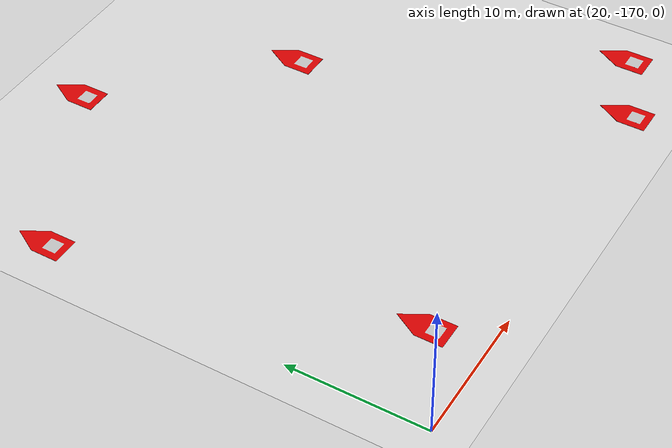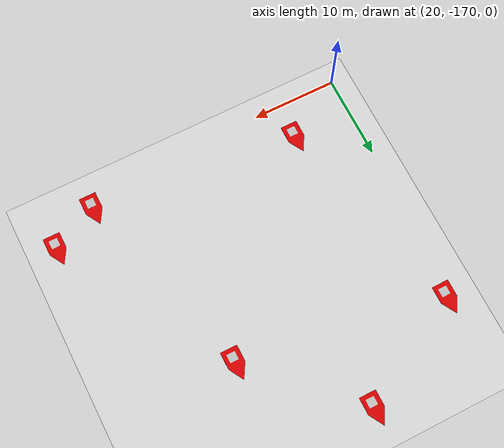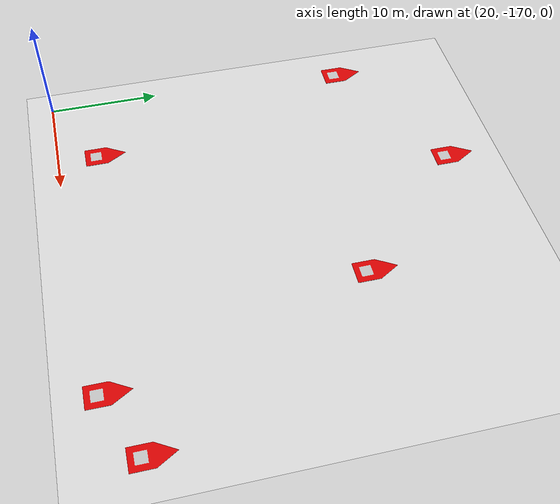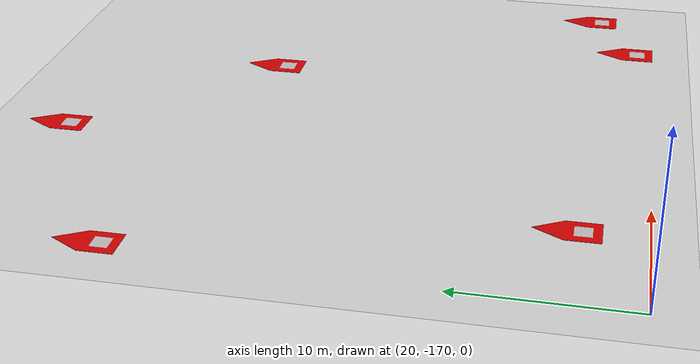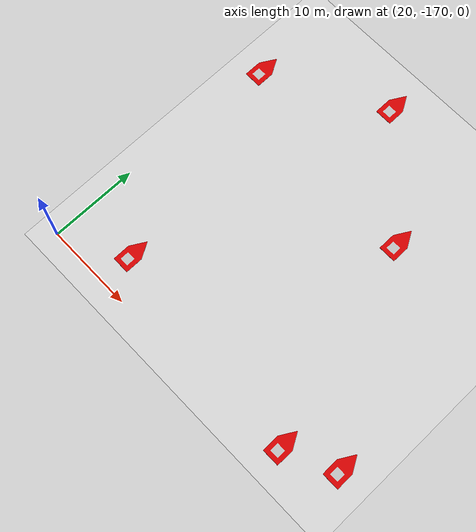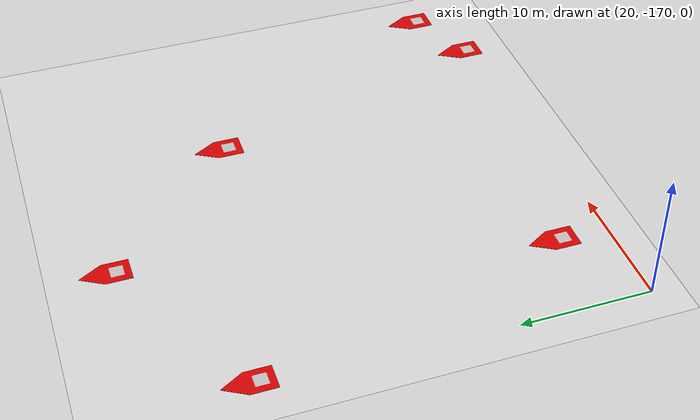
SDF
<sdf version="1.7">
 <world name="default">
  <model name="ground_plane">
   <static>1</static>
   <link name="link">
    <collision name="collision">
     <geometry><plane><normal>0 0 1</normal><size>5000 5000</size></plane></geometry>
     <surface><friction><ode><mu>1</mu><mu2>1</mu2></ode></friction></surface>
    </collision>
    <visual name="runway">
     <pose>0 0 0.005 0 0 -1.5707</pose>
     <cast_shadows>0</cast_shadows>
     <geometry><plane><normal>0 0 1</normal><size>1829 45</size></plane></geometry>
     <material>
      <script><uri>file://media/materials/scripts/gazebo.material</uri><name>Gazebo/Runway</name></script>
     </material>
    </visual>
    <visual name="grass">
     <pose>0 0 -0.1 0 -0 0</pose>
     <cast_shadows>0</cast_shadows>
     <geometry><plane><normal>0 0 1</normal><size>5000 5000</size></plane></geometry>
     <material>
      <script><uri>file://media/materials/scripts/gazebo.material</uri><name>Gazebo/Grass</name></script>
     </material>
    </visual>
   </link>
  </model>
  <model name="biao_12_0_clone_16_clone_0_clone_1">
   <link name="link_0">
    <inertial>
     <mass>1</mass>
     <inertia>
      <ixx>0.166667</ixx>
      <ixy>0</ixy>
      <ixz>0</ixz>
      <iyy>0.166667</iyy>
      <iyz>0</iyz>
      <izz>0.166667</izz>
     </inertia>
    </inertial>
    <visual name="visual">
     <geometry>
      <mesh><uri>/home/lzc/lzc-code/src/simulation/models/biao/12/12.dae</uri><scale>1 1 1</scale></mesh>
     </geometry>
    </visual>
    <collision name="collision">
     <geometry>
      <mesh><uri>/home/lzc/lzc-code/src/simulation/models/biao/12/12.dae</uri><scale>1 1 1</scale></mesh>
     </geometry>
     <surface>
      <friction>
       <ode><mu>1</mu><mu2>1</mu2><fdir1>0 0 0</fdir1><slip1>0</slip1><slip2>0</slip2></ode>
       <torsional>
        <coefficient>1</coefficient>
        <patch_radius>0</patch_radius>
        <surface_radius>0</surface_radius>
        <use_patch_radius>1</use_patch_radius>
        <ode><slip>0</slip></ode>
       </torsional>
      </friction>
      <bounce><restitution_coefficient>0</restitution_coefficient><threshold>1e+06</threshold></bounce>
      <contact>
       <collide_without_contact>0</collide_without_contact>
       <collide_without_contact_bitmask>1</collide_without_contact_bitmask>
       <collide_bitmask>1</collide_bitmask>
       <ode>
        <soft_cfm>0</soft_cfm>
        <soft_erp>0.2</soft_erp>
        <kp>1e+13</kp>
        <kd>1</kd>
        <max_vel>0.01</max_vel>
        <min_depth>0</min_depth>
       </ode>
       <bullet>
        <split_impulse>1</split_impulse>
        <split_impulse_penetration_threshold>-0.01</split_impulse_penetration_threshold>
        <soft_cfm>0</soft_cfm>
        <soft_erp>0.2</soft_erp>
        <kp>1e+13</kp>
        <kd>1</kd>
       </bullet>
      </contact>
     </surface>
    </collision>
   </link>
   <static>0</static>
   <pose>27 -166.516 0.010973 -2.7e-05 -2.7e-05 -1e-06</pose>
  </model>
  <model name="biao_12_0_clone_16_clone_0_clone_3">
   <link name="link_0">
    <inertial>
     <mass>1</mass>
     <inertia>
      <ixx>0.166667</ixx>
      <ixy>0</ixy>
      <ixz>0</ixz>
      <iyy>0.166667</iyy>
      <iyz>0</iyz>
      <izz>0.166667</izz>
     </inertia>
    </inertial>
    <visual name="visual">
     <geometry>
      <mesh><uri>/home/lzc/lzc-code/src/simulation/models/biao/12/12.dae</uri><scale>1 1 1</scale></mesh>
     </geometry>
    </visual>
    <collision name="collision">
     <geometry>
      <mesh><uri>/home/lzc/lzc-code/src/simulation/models/biao/12/12.dae</uri><scale>1 1 1</scale></mesh>
     </geometry>
     <surface>
      <friction>
       <ode><mu>1</mu><mu2>1</mu2><fdir1>0 0 0</fdir1><slip1>0</slip1><slip2>0</slip2></ode>
       <torsional>
        <coefficient>1</coefficient>
        <patch_radius>0</patch_radius>
        <surface_radius>0</surface_radius>
        <use_patch_radius>1</use_patch_radius>
        <ode><slip>0</slip></ode>
       </torsional>
      </friction>
      <bounce><restitution_coefficient>0</restitution_coefficient><threshold>1e+06</threshold></bounce>
      <contact>
       <collide_without_contact>0</collide_without_contact>
       <collide_without_contact_bitmask>1</collide_without_contact_bitmask>
       <collide_bitmask>1</collide_bitmask>
       <ode>
        <soft_cfm>0</soft_cfm>
        <soft_erp>0.2</soft_erp>
        <kp>1e+13</kp>
        <kd>1</kd>
        <max_vel>0.01</max_vel>
        <min_depth>0</min_depth>
       </ode>
       <bullet>
        <split_impulse>1</split_impulse>
        <split_impulse_penetration_threshold>-0.01</split_impulse_penetration_threshold>
        <soft_cfm>0</soft_cfm>
        <soft_erp>0.2</soft_erp>
        <kp>1e+13</kp>
        <kd>1</kd>
       </bullet>
      </contact>
     </surface>
    </collision>
   </link>
   <static>0</static>
   <pose>51.4629 -169 0.010973 -2.7e-05 -2.7e-05 -1e-06</pose>
  </model>
  <model name="biao_12_0_clone_16_clone_0_clone_6">
   <link name="link_0">
    <inertial>
     <mass>1</mass>
     <inertia>
      <ixx>0.166667</ixx>
      <ixy>0</ixy>
      <ixz>0</ixz>
      <iyy>0.166667</iyy>
      <iyz>0</iyz>
      <izz>0.166667</izz>
     </inertia>
    </inertial>
    <visual name="visual">
     <geometry>
      <mesh><uri>/home/lzc/lzc-code/src/simulation/models/biao/12/12.dae</uri><scale>1 1 1</scale></mesh>
     </geometry>
    </visual>
    <collision name="collision">
     <geometry>
      <mesh><uri>/home/lzc/lzc-code/src/simulation/models/biao/12/12.dae</uri><scale>1 1 1</scale></mesh>
     </geometry>
     <surface>
      <friction>
       <ode><mu>1</mu><mu2>1</mu2><fdir1>0 0 0</fdir1><slip1>0</slip1><slip2>0</slip2></ode>
       <torsional>
        <coefficient>1</coefficient>
        <patch_radius>0</patch_radius>
        <surface_radius>0</surface_radius>
        <use_patch_radius>1</use_patch_radius>
        <ode><slip>0</slip></ode>
       </torsional>
      </friction>
      <bounce><restitution_coefficient>0</restitution_coefficient><threshold>1e+06</threshold></bounce>
      <contact>
       <collide_without_contact>0</collide_without_contact>
       <collide_without_contact_bitmask>1</collide_without_contact_bitmask>
       <collide_bitmask>1</collide_bitmask>
       <ode>
        <soft_cfm>0</soft_cfm>
        <soft_erp>0.2</soft_erp>
        <kp>1e+13</kp>
        <kd>1</kd>
        <max_vel>0.01</max_vel>
        <min_depth>0</min_depth>
       </ode>
       <bullet>
        <split_impulse>1</split_impulse>
        <split_impulse_penetration_threshold>-0.01</split_impulse_penetration_threshold>
        <soft_cfm>0</soft_cfm>
        <soft_erp>0.2</soft_erp>
        <kp>1e+13</kp>
        <kd>1</kd>
       </bullet>
      </contact>
     </surface>
    </collision>
   </link>
   <static>0</static>
   <pose>57 -166.446 0.011 0 0 -1e-06</pose>
  </model>
  <model name="biao_12_0_clone_16_clone_0_clone_7">
   <link name="link_0">
    <inertial>
     <mass>1</mass>
     <inertia>
      <ixx>0.166667</ixx>
      <ixy>0</ixy>
      <ixz>0</ixz>
      <iyy>0.166667</iyy>
      <iyz>0</iyz>
      <izz>0.166667</izz>
     </inertia>
    </inertial>
    <visual name="visual">
     <geometry>
      <mesh><uri>/home/lzc/lzc-code/src/simulation/models/biao/12/12.dae</uri><scale>1 1 1</scale></mesh>
     </geometry>
    </visual>
    <collision name="collision">
     <geometry>
      <mesh><uri>/home/lzc/lzc-code/src/simulation/models/biao/12/12.dae</uri><scale>1 1 1</scale></mesh>
     </geometry>
     <surface>
      <friction>
       <ode><mu>1</mu><mu2>1</mu2><fdir1>0 0 0</fdir1><slip1>0</slip1><slip2>0</slip2></ode>
       <torsional>
        <coefficient>1</coefficient>
        <patch_radius>0</patch_radius>
        <surface_radius>0</surface_radius>
        <use_patch_radius>1</use_patch_radius>
        <ode><slip>0</slip></ode>
       </torsional>
      </friction>
      <bounce><restitution_coefficient>0</restitution_coefficient><threshold>1e+06</threshold></bounce>
      <contact>
       <collide_without_contact>0</collide_without_contact>
       <collide_without_contact_bitmask>1</collide_without_contact_bitmask>
       <collide_bitmask>1</collide_bitmask>
       <ode>
        <soft_cfm>0</soft_cfm>
        <soft_erp>0.2</soft_erp>
        <kp>1e+13</kp>
        <kd>1</kd>
        <max_vel>0.01</max_vel>
        <min_depth>0</min_depth>
       </ode>
       <bullet>
        <split_impulse>1</split_impulse>
        <split_impulse_penetration_threshold>-0.01</split_impulse_penetration_threshold>
        <soft_cfm>0</soft_cfm>
        <soft_erp>0.2</soft_erp>
        <kp>1e+13</kp>
        <kd>1</kd>
       </bullet>
      </contact>
     </surface>
    </collision>
   </link>
   <static>0</static>
   <pose>45 -146 0.010964 0 0 -1e-06</pose>
  </model>
  <model name="biao_12_0_clone_16_clone_0_clone_8">
   <link name="link_0">
    <inertial>
     <mass>1</mass>
     <inertia>
      <ixx>0.166667</ixx>
      <ixy>0</ixy>
      <ixz>0</ixz>
      <iyy>0.166667</iyy>
      <iyz>0</iyz>
      <izz>0.166667</izz>
     </inertia>
    </inertial>
    <visual name="visual">
     <geometry>
      <mesh><uri>/home/lzc/lzc-code/src/simulation/models/biao/12/12.dae</uri><scale>1 1 1</scale></mesh>
     </geometry>
    </visual>
    <collision name="collision">
     <geometry>
      <mesh><uri>/home/lzc/lzc-code/src/simulation/models/biao/12/12.dae</uri><scale>1 1 1</scale></mesh>
     </geometry>
     <surface>
      <friction>
       <ode><mu>1</mu><mu2>1</mu2><fdir1>0 0 0</fdir1><slip1>0</slip1><slip2>0</slip2></ode>
       <torsional>
        <coefficient>1</coefficient>
        <patch_radius>0</patch_radius>
        <surface_radius>0</surface_radius>
        <use_patch_radius>1</use_patch_radius>
        <ode><slip>0</slip></ode>
       </torsional>
      </friction>
      <bounce><restitution_coefficient>0</restitution_coefficient><threshold>1e+06</threshold></bounce>
      <contact>
       <collide_without_contact>0</collide_without_contact>
       <collide_without_contact_bitmask>1</collide_without_contact_bitmask>
       <collide_bitmask>1</collide_bitmask>
       <ode>
        <soft_cfm>0</soft_cfm>
        <soft_erp>0.2</soft_erp>
        <kp>1e+13</kp>
        <kd>1</kd>
        <max_vel>0.01</max_vel>
        <min_depth>0</min_depth>
       </ode>
       <bullet>
        <split_impulse>1</split_impulse>
        <split_impulse_penetration_threshold>-0.01</split_impulse_penetration_threshold>
        <soft_cfm>0</soft_cfm>
        <soft_erp>0.2</soft_erp>
        <kp>1e+13</kp>
        <kd>1</kd>
       </bullet>
      </contact>
     </surface>
    </collision>
   </link>
   <static>0</static>
   <pose>34 -135 0.010973 -2.7e-05 -2.7e-05 -1e-06</pose>
  </model>
  <model name="biao_12_0_clone_16_clone_0_clone_12">
   <link name="link_0">
    <inertial>
     <mass>1</mass>
     <inertia>
      <ixx>0.166667</ixx>
      <ixy>0</ixy>
      <ixz>0</ixz>
      <iyy>0.166667</iyy>
      <iyz>0</iyz>
      <izz>0.166667</izz>
     </inertia>
    </inertial>
    <visual name="visual">
     <geometry>
      <mesh><uri>/home/lzc/lzc-code/src/simulation/models/biao/12/12.dae</uri><scale>1 1 1</scale></mesh>
     </geometry>
    </visual>
    <collision name="collision">
     <geometry>
      <mesh><uri>/home/lzc/lzc-code/src/simulation/models/biao/12/12.dae</uri><scale>1 1 1</scale></mesh>
     </geometry>
     <surface>
      <friction>
       <ode><mu>1</mu><mu2>1</mu2><fdir1>0 0 0</fdir1><slip1>0</slip1><slip2>0</slip2></ode>
       <torsional>
        <coefficient>1</coefficient>
        <patch_radius>0</patch_radius>
        <surface_radius>0</surface_radius>
        <use_patch_radius>1</use_patch_radius>
        <ode><slip>0</slip></ode>
       </torsional>
      </friction>
      <bounce><restitution_coefficient>0</restitution_coefficient><threshold>1e+06</threshold></bounce>
      <contact>
       <collide_without_contact>0</collide_without_contact>
       <collide_without_contact_bitmask>1</collide_without_contact_bitmask>
       <collide_bitmask>1</collide_bitmask>
       <ode>
        <soft_cfm>0</soft_cfm>
        <soft_erp>0.2</soft_erp>
        <kp>1e+13</kp>
        <kd>1</kd>
        <max_vel>0.01</max_vel>
        <min_depth>0</min_depth>
       </ode>
       <bullet>
        <split_impulse>1</split_impulse>
        <split_impulse_penetration_threshold>-0.01</split_impulse_penetration_threshold>
        <soft_cfm>0</soft_cfm>
        <soft_erp>0.2</soft_erp>
        <kp>1e+13</kp>
        <kd>1</kd>
       </bullet>
      </contact>
     </surface>
    </collision>
   </link>
   <static>0</static>
   <pose>21 -142 0.010973 -2.7e-05 -2.7e-05 -1e-06</pose>
  </model>
 </world>
</sdf>
